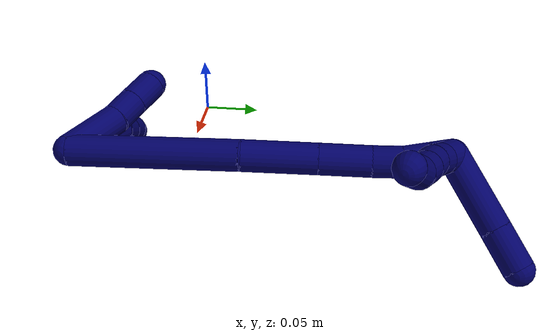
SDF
<sdf version="1.7">
 <world name="default">
  <model name="7">
   <static>0</static>
   <link name="7">
    <collision name="collision-cylinder-e_1_2_8">
     <pose>-0.000523 -0.012545 0.041512 0.293479 -0.012062 -0.001783</pose>
     <geometry><cylinder><radius>0.0125</radius><length>0.086738</length></cylinder></geometry>
     <surface>
      <friction><ode><mu>1.16</mu><mu2>1.16</mu2><slip1>0</slip1><slip2>0</slip2></ode></friction>
      <contact><ode><kp>1e+06</kp><kd>1</kd><max_vel>0</max_vel><min_depth>0.001</min_depth></ode></contact>
     </surface>
    </collision>
    <visual name="visual-cylinder-e_1_2_8">
     <pose>-0.000523 -0.012545 0.041512 0.293479 -0.012062 -0.001783</pose>
     <geometry><cylinder><radius>0.0125</radius><length>0.086738</length></cylinder></geometry>
     <material><ambient>0.003922 0 0.403922 1</ambient></material>
    </visual>
    <collision name="collision-cylinder-e_2_8_9">
     <pose>-0.001164 -0.030639 0.092958 0.50938 -0.010375 -0.002701</pose>
     <geometry><cylinder><radius>0.0125</radius><length>0.022758</length></cylinder></geometry>
     <surface>
      <friction><ode><mu>1.16</mu><mu2>1.16</mu2><slip1>0</slip1><slip2>0</slip2></ode></friction>
      <contact><ode><kp>1e+06</kp><kd>1</kd><max_vel>0</max_vel><min_depth>0.001</min_depth></ode></contact>
     </surface>
    </collision>
    <visual name="visual-cylinder-e_2_8_9">
     <pose>-0.001164 -0.030639 0.092958 0.50938 -0.010375 -0.002701</pose>
     <geometry><cylinder><radius>0.0125</radius><length>0.022758</length></cylinder></geometry>
     <material><ambient>0.003922 0 0.403922 1</ambient></material>
    </visual>
    <collision name="collision-cylinder-e_3_9_10">
     <pose>-0.001382 -0.041196 0.111614 0.52121 -0.009862 -0.00263</pose>
     <geometry><cylinder><radius>0.0125</radius><length>0.020118</length></cylinder></geometry>
     <surface>
      <friction><ode><mu>1.16</mu><mu2>1.16</mu2><slip1>0</slip1><slip2>0</slip2></ode></friction>
      <contact><ode><kp>1e+06</kp><kd>1</kd><max_vel>0</max_vel><min_depth>0.001</min_depth></ode></contact>
     </surface>
    </collision>
    <visual name="visual-cylinder-e_3_9_10">
     <pose>-0.001382 -0.041196 0.111614 0.52121 -0.009862 -0.00263</pose>
     <geometry><cylinder><radius>0.0125</radius><length>0.020118</length></cylinder></geometry>
     <material><ambient>0.003922 0 0.403922 1</ambient></material>
    </visual>
    <collision name="collision-cylinder-e_4_10_6">
     <pose>-0.001258 -0.053116 0.127825 0.745439 0.021849 0.008543</pose>
     <geometry><cylinder><radius>0.0125</radius><length>0.020386</length></cylinder></geometry>
     <surface>
      <friction><ode><mu>1.16</mu><mu2>1.16</mu2><slip1>0</slip1><slip2>0</slip2></ode></friction>
      <contact><ode><kp>1e+06</kp><kd>1</kd><max_vel>0</max_vel><min_depth>0.001</min_depth></ode></contact>
     </surface>
    </collision>
    <visual name="visual-cylinder-e_4_10_6">
     <pose>-0.001258 -0.053116 0.127825 0.745439 0.021849 0.008543</pose>
     <geometry><cylinder><radius>0.0125</radius><length>0.020386</length></cylinder></geometry>
     <material><ambient>0.003922 0 0.403922 1</ambient></material>
    </visual>
    <collision name="collision-cylinder-e_1_2_11">
     <pose>0.000272 0.006382 0.024294 -0.256884 0.010811 -0.001396</pose>
     <geometry><cylinder><radius>0.0125</radius><length>0.050239</length></cylinder></geometry>
     <surface>
      <friction><ode><mu>1.16</mu><mu2>1.16</mu2><slip1>0</slip1><slip2>0</slip2></ode></friction>
      <contact><ode><kp>1e+06</kp><kd>1</kd><max_vel>0</max_vel><min_depth>0.001</min_depth></ode></contact>
     </surface>
    </collision>
    <visual name="visual-cylinder-e_1_2_11">
     <pose>0.000272 0.006382 0.024294 -0.256884 0.010811 -0.001396</pose>
     <geometry><cylinder><radius>0.0125</radius><length>0.050239</length></cylinder></geometry>
     <material><ambient>0.003922 0 0.403922 1</ambient></material>
    </visual>
    <collision name="collision-cylinder-e_2_11_12">
     <pose>0.002559 0.015639 0.059818 -0.250661 0.17221 -0.02175</pose>
     <geometry><cylinder><radius>0.0125</radius><length>0.023533</length></cylinder></geometry>
     <surface>
      <friction><ode><mu>1.16</mu><mu2>1.16</mu2><slip1>0</slip1><slip2>0</slip2></ode></friction>
      <contact><ode><kp>1e+06</kp><kd>1</kd><max_vel>0</max_vel><min_depth>0.001</min_depth></ode></contact>
     </surface>
    </collision>
    <visual name="visual-cylinder-e_2_11_12">
     <pose>0.002559 0.015639 0.059818 -0.250661 0.17221 -0.02175</pose>
     <geometry><cylinder><radius>0.0125</radius><length>0.023533</length></cylinder></geometry>
     <material><ambient>0.003922 0 0.403922 1</ambient></material>
    </visual>
    <collision name="collision-cylinder-e_3_12_5">
     <pose>0.00668 0.021923 0.083535 -0.266458 0.161153 -0.021644</pose>
     <geometry><cylinder><radius>0.0125</radius><length>0.026228</length></cylinder></geometry>
     <surface>
      <friction><ode><mu>1.16</mu><mu2>1.16</mu2><slip1>0</slip1><slip2>0</slip2></ode></friction>
      <contact><ode><kp>1e+06</kp><kd>1</kd><max_vel>0</max_vel><min_depth>0.001</min_depth></ode></contact>
     </surface>
    </collision>
    <visual name="visual-cylinder-e_3_12_5">
     <pose>0.00668 0.021923 0.083535 -0.266458 0.161153 -0.021644</pose>
     <geometry><cylinder><radius>0.0125</radius><length>0.026228</length></cylinder></geometry>
     <material><ambient>0.003922 0 0.403922 1</ambient></material>
    </visual>
    <collision name="collision-cylinder-e_1_2_13">
     <pose>-0.044083 0.044784 0.023773 -1.08278 -0.715667 0.44235</pose>
     <geometry><cylinder><radius>0.0125</radius><length>0.134374</length></cylinder></geometry>
     <surface>
      <friction><ode><mu>1.16</mu><mu2>1.16</mu2><slip1>0</slip1><slip2>0</slip2></ode></friction>
      <contact><ode><kp>1e+06</kp><kd>1</kd><max_vel>0</max_vel><min_depth>0.001</min_depth></ode></contact>
     </surface>
    </collision>
    <visual name="visual-cylinder-e_1_2_13">
     <pose>-0.044083 0.044784 0.023773 -1.08278 -0.715667 0.44235</pose>
     <geometry><cylinder><radius>0.0125</radius><length>0.134374</length></cylinder></geometry>
     <material><ambient>0.003922 0 0.403922 1</ambient></material>
    </visual>
    <collision name="collision-cylinder-e_2_13_14">
     <pose>-0.107964 0.106876 0.061168 -0.903991 -0.732231 0.368083</pose>
     <geometry><cylinder><radius>0.0125</radius><length>0.05923</length></cylinder></geometry>
     <surface>
      <friction><ode><mu>1.16</mu><mu2>1.16</mu2><slip1>0</slip1><slip2>0</slip2></ode></friction>
      <contact><ode><kp>1e+06</kp><kd>1</kd><max_vel>0</max_vel><min_depth>0.001</min_depth></ode></contact>
     </surface>
    </collision>
    <visual name="visual-cylinder-e_2_13_14">
     <pose>-0.107964 0.106876 0.061168 -0.903991 -0.732231 0.368083</pose>
     <geometry><cylinder><radius>0.0125</radius><length>0.05923</length></cylinder></geometry>
     <material><ambient>0.003922 0 0.403922 1</ambient></material>
    </visual>
    <collision name="collision-cylinder-e_3_14_15">
     <pose>-0.141706 0.136333 0.084278 -0.907843 -0.735245 0.37148</pose>
     <geometry><cylinder><radius>0.0125</radius><length>0.041572</length></cylinder></geometry>
     <surface>
      <friction><ode><mu>1.16</mu><mu2>1.16</mu2><slip1>0</slip1><slip2>0</slip2></ode></friction>
      <contact><ode><kp>1e+06</kp><kd>1</kd><max_vel>0</max_vel><min_depth>0.001</min_depth></ode></contact>
     </surface>
    </collision>
    <visual name="visual-cylinder-e_3_14_15">
     <pose>-0.141706 0.136333 0.084278 -0.907843 -0.735245 0.37148</pose>
     <geometry><cylinder><radius>0.0125</radius><length>0.041572</length></cylinder></geometry>
     <material><ambient>0.003922 0 0.403922 1</ambient></material>
    </visual>
    <collision name="collision-cylinder-e_4_15_16">
     <pose>-0.163367 0.156539 0.097933 -1.09338 -0.705149 0.440569</pose>
     <geometry><cylinder><radius>0.0125</radius><length>0.023818</length></cylinder></geometry>
     <surface>
      <friction><ode><mu>1.16</mu><mu2>1.16</mu2><slip1>0</slip1><slip2>0</slip2></ode></friction>
      <contact><ode><kp>1e+06</kp><kd>1</kd><max_vel>0</max_vel><min_depth>0.001</min_depth></ode></contact>
     </surface>
    </collision>
    <visual name="visual-cylinder-e_4_15_16">
     <pose>-0.163367 0.156539 0.097933 -1.09338 -0.705149 0.440569</pose>
     <geometry><cylinder><radius>0.0125</radius><length>0.023818</length></cylinder></geometry>
     <material><ambient>0.003922 0 0.403922 1</ambient></material>
    </visual>
    <collision name="collision-cylinder-e_5_16_17">
     <pose>-0.176451 0.171386 0.10788 -0.865711 -0.541557 0.255151</pose>
     <geometry><cylinder><radius>0.0125</radius><length>0.020817</length></cylinder></geometry>
     <surface>
      <friction><ode><mu>1.16</mu><mu2>1.16</mu2><slip1>0</slip1><slip2>0</slip2></ode></friction>
      <contact><ode><kp>1e+06</kp><kd>1</kd><max_vel>0</max_vel><min_depth>0.001</min_depth></ode></contact>
     </surface>
    </collision>
    <visual name="visual-cylinder-e_5_16_17">
     <pose>-0.176451 0.171386 0.10788 -0.865711 -0.541557 0.255151</pose>
     <geometry><cylinder><radius>0.0125</radius><length>0.020817</length></cylinder></geometry>
     <material><ambient>0.003922 0 0.403922 1</ambient></material>
    </visual>
    <collision name="collision-cylinder-e_6_17_1">
     <pose>-0.186675 0.182478 0.121394 -0.507479 -0.502145 0.132832</pose>
     <geometry><cylinder><radius>0.0125</radius><length>0.020189</length></cylinder></geometry>
     <surface>
      <friction><ode><mu>1.16</mu><mu2>1.16</mu2><slip1>0</slip1><slip2>0</slip2></ode></friction>
      <contact><ode><kp>1e+06</kp><kd>1</kd><max_vel>0</max_vel><min_depth>0.001</min_depth></ode></contact>
     </surface>
    </collision>
    <visual name="visual-cylinder-e_6_17_1">
     <pose>-0.186675 0.182478 0.121394 -0.507479 -0.502145 0.132832</pose>
     <geometry><cylinder><radius>0.0125</radius><length>0.020189</length></cylinder></geometry>
     <material><ambient>0.003922 0 0.403922 1</ambient></material>
    </visual>
    <collision name="collision-cylinder-e_1_1_18">
     <pose>-0.223102 0.18546 0.120242 2.99433 -1.2936 -2.94685</pose>
     <geometry><cylinder><radius>0.0125</radius><length>0.065643</length></cylinder></geometry>
     <surface>
      <friction><ode><mu>1.16</mu><mu2>1.16</mu2><slip1>0</slip1><slip2>0</slip2></ode></friction>
      <contact><ode><kp>1e+06</kp><kd>1</kd><max_vel>0</max_vel><min_depth>0.001</min_depth></ode></contact>
     </surface>
    </collision>
    <visual name="visual-cylinder-e_1_1_18">
     <pose>-0.223102 0.18546 0.120242 2.99433 -1.2936 -2.94685</pose>
     <geometry><cylinder><radius>0.0125</radius><length>0.065643</length></cylinder></geometry>
     <material><ambient>0.003922 0 0.403922 1</ambient></material>
    </visual>
    <collision name="collision-cylinder-e_2_18_4">
     <pose>-0.271218 0.183281 0.106826 2.95374 -1.299 -2.89475</pose>
     <geometry><cylinder><radius>0.0125</radius><length>0.034357</length></cylinder></geometry>
     <surface>
      <friction><ode><mu>1.16</mu><mu2>1.16</mu2><slip1>0</slip1><slip2>0</slip2></ode></friction>
      <contact><ode><kp>1e+06</kp><kd>1</kd><max_vel>0</max_vel><min_depth>0.001</min_depth></ode></contact>
     </surface>
    </collision>
    <visual name="visual-cylinder-e_2_18_4">
     <pose>-0.271218 0.183281 0.106826 2.95374 -1.299 -2.89475</pose>
     <geometry><cylinder><radius>0.0125</radius><length>0.034357</length></cylinder></geometry>
     <material><ambient>0.003922 0 0.403922 1</ambient></material>
    </visual>
    <collision name="collision-cylinder-e_1_1_19">
     <pose>-0.189125 0.187133 0.119427 -3.10501 0.243159 -2.84433</pose>
     <geometry><cylinder><radius>0.0125</radius><length>0.02</length></cylinder></geometry>
     <surface>
      <friction><ode><mu>1.16</mu><mu2>1.16</mu2><slip1>0</slip1><slip2>0</slip2></ode></friction>
      <contact><ode><kp>1e+06</kp><kd>1</kd><max_vel>0</max_vel><min_depth>0.001</min_depth></ode></contact>
     </surface>
    </collision>
    <visual name="visual-cylinder-e_1_1_19">
     <pose>-0.189125 0.187133 0.119427 -3.10501 0.243159 -2.84433</pose>
     <geometry><cylinder><radius>0.0125</radius><length>0.02</length></cylinder></geometry>
     <material><ambient>0.003922 0 0.403922 1</ambient></material>
    </visual>
    <collision name="collision-cylinder-e_2_19_20">
     <pose>-0.184387 0.189392 0.100192 -2.94455 0.23526 -1.74853</pose>
     <geometry><cylinder><radius>0.0125</radius><length>0.02</length></cylinder></geometry>
     <surface>
      <friction><ode><mu>1.16</mu><mu2>1.16</mu2><slip1>0</slip1><slip2>0</slip2></ode></friction>
      <contact><ode><kp>1e+06</kp><kd>1</kd><max_vel>0</max_vel><min_depth>0.001</min_depth></ode></contact>
     </surface>
    </collision>
    <visual name="visual-cylinder-e_2_19_20">
     <pose>-0.184387 0.189392 0.100192 -2.94455 0.23526 -1.74853</pose>
     <geometry><cylinder><radius>0.0125</radius><length>0.02</length></cylinder></geometry>
     <material><ambient>0.003922 0 0.403922 1</ambient></material>
    </visual>
    <collision name="collision-cylinder-e_3_20_21">
     <pose>-0.181291 0.193148 0.080858 -2.95472 0.076535 -0.775746</pose>
     <geometry><cylinder><radius>0.0125</radius><length>0.02</length></cylinder></geometry>
     <surface>
      <friction><ode><mu>1.16</mu><mu2>1.16</mu2><slip1>0</slip1><slip2>0</slip2></ode></friction>
      <contact><ode><kp>1e+06</kp><kd>1</kd><max_vel>0</max_vel><min_depth>0.001</min_depth></ode></contact>
     </surface>
    </collision>
    <visual name="visual-cylinder-e_3_20_21">
     <pose>-0.181291 0.193148 0.080858 -2.95472 0.076535 -0.775746</pose>
     <geometry><cylinder><radius>0.0125</radius><length>0.02</length></cylinder></geometry>
     <material><ambient>0.003922 0 0.403922 1</ambient></material>
    </visual>
    <collision name="collision-cylinder-e_4_21_22">
     <pose>-0.179216 0.196897 0.06133 -2.94908 0.13145 -1.19664</pose>
     <geometry><cylinder><radius>0.0125</radius><length>0.02</length></cylinder></geometry>
     <surface>
      <friction><ode><mu>1.16</mu><mu2>1.16</mu2><slip1>0</slip1><slip2>0</slip2></ode></friction>
      <contact><ode><kp>1e+06</kp><kd>1</kd><max_vel>0</max_vel><min_depth>0.001</min_depth></ode></contact>
     </surface>
    </collision>
    <visual name="visual-cylinder-e_4_21_22">
     <pose>-0.179216 0.196897 0.06133 -2.94908 0.13145 -1.19664</pose>
     <geometry><cylinder><radius>0.0125</radius><length>0.02</length></cylinder></geometry>
     <material><ambient>0.003922 0 0.403922 1</ambient></material>
    </visual>
    <collision name="collision-cylinder-e_5_22_3">
     <pose>-0.174042 0.202126 0.042999 -2.77197 0.396603 -1.64294</pose>
     <geometry><cylinder><radius>0.0125</radius><length>0.02</length></cylinder></geometry>
     <surface>
      <friction><ode><mu>1.16</mu><mu2>1.16</mu2><slip1>0</slip1><slip2>0</slip2></ode></friction>
      <contact><ode><kp>1e+06</kp><kd>1</kd><max_vel>0</max_vel><min_depth>0.001</min_depth></ode></contact>
     </surface>
    </collision>
    <visual name="visual-cylinder-e_5_22_3">
     <pose>-0.174042 0.202126 0.042999 -2.77197 0.396603 -1.64294</pose>
     <geometry><cylinder><radius>0.0125</radius><length>0.02</length></cylinder></geometry>
     <material><ambient>0.003922 0 0.403922 1</ambient></material>
    </visual>
    <collision name="collision-sphere-3">
     <pose>-0.170179 0.205458 0.034398 0 -0 0</pose>
     <geometry><sphere><radius>0.0125</radius></sphere></geometry>
     <surface>
      <friction><ode><mu>1.16</mu><mu2>1.16</mu2><slip1>0</slip1><slip2>0</slip2></ode></friction>
      <contact><ode><kp>1e+06</kp><kd>1</kd><max_vel>0</max_vel><min_depth>0.001</min_depth></ode></contact>
     </surface>
    </collision>
    <visual name="visual-sphere-3">
     <pose>-0.170179 0.205458 0.034398 0 -0 0</pose>
     <geometry><sphere><radius>0.0125</radius></sphere></geometry>
     <material><ambient>0.003922 0 0.403922 1</ambient></material>
    </visual>
    <collision name="collision-sphere-22">
     <pose>-0.177905 0.198794 0.0516 0 -0 0</pose>
     <geometry><sphere><radius>0.0125</radius></sphere></geometry>
     <surface>
      <friction><ode><mu>1.16</mu><mu2>1.16</mu2><slip1>0</slip1><slip2>0</slip2></ode></friction>
      <contact><ode><kp>1e+06</kp><kd>1</kd><max_vel>0</max_vel><min_depth>0.001</min_depth></ode></contact>
     </surface>
    </collision>
    <visual name="visual-sphere-22">
     <pose>-0.177905 0.198794 0.0516 0 -0 0</pose>
     <geometry><sphere><radius>0.0125</radius></sphere></geometry>
     <material><ambient>0.003922 0 0.403922 1</ambient></material>
    </visual>
    <collision name="collision-sphere-21">
     <pose>-0.180527 0.195 0.071061 0 -0 0</pose>
     <geometry><sphere><radius>0.0125</radius></sphere></geometry>
     <surface>
      <friction><ode><mu>1.16</mu><mu2>1.16</mu2><slip1>0</slip1><slip2>0</slip2></ode></friction>
      <contact><ode><kp>1e+06</kp><kd>1</kd><max_vel>0</max_vel><min_depth>0.001</min_depth></ode></contact>
     </surface>
    </collision>
    <visual name="visual-sphere-21">
     <pose>-0.180527 0.195 0.071061 0 -0 0</pose>
     <geometry><sphere><radius>0.0125</radius></sphere></geometry>
     <material><ambient>0.003922 0 0.403922 1</ambient></material>
    </visual>
    <collision name="collision-sphere-20">
     <pose>-0.182056 0.191296 0.090655 0 -0 0</pose>
     <geometry><sphere><radius>0.0125</radius></sphere></geometry>
     <surface>
      <friction><ode><mu>1.16</mu><mu2>1.16</mu2><slip1>0</slip1><slip2>0</slip2></ode></friction>
      <contact><ode><kp>1e+06</kp><kd>1</kd><max_vel>0</max_vel><min_depth>0.001</min_depth></ode></contact>
     </surface>
    </collision>
    <visual name="visual-sphere-20">
     <pose>-0.182056 0.191296 0.090655 0 -0 0</pose>
     <geometry><sphere><radius>0.0125</radius></sphere></geometry>
     <material><ambient>0.003922 0 0.403922 1</ambient></material>
    </visual>
    <collision name="collision-sphere-19">
     <pose>-0.186718 0.187488 0.109728 0 -0 0</pose>
     <geometry><sphere><radius>0.0125</radius></sphere></geometry>
     <surface>
      <friction><ode><mu>1.16</mu><mu2>1.16</mu2><slip1>0</slip1><slip2>0</slip2></ode></friction>
      <contact><ode><kp>1e+06</kp><kd>1</kd><max_vel>0</max_vel><min_depth>0.001</min_depth></ode></contact>
     </surface>
    </collision>
    <visual name="visual-sphere-19">
     <pose>-0.186718 0.187488 0.109728 0 -0 0</pose>
     <geometry><sphere><radius>0.0125</radius></sphere></geometry>
     <material><ambient>0.003922 0 0.403922 1</ambient></material>
    </visual>
    <collision name="collision-sphere-11">
     <pose>0.000543 0.012763 0.048588 0 -0 0</pose>
     <geometry><sphere><radius>0.0125</radius></sphere></geometry>
     <surface>
      <friction><ode><mu>1.16</mu><mu2>1.16</mu2><slip1>0</slip1><slip2>0</slip2></ode></friction>
      <contact><ode><kp>1e+06</kp><kd>1</kd><max_vel>0</max_vel><min_depth>0.001</min_depth></ode></contact>
     </surface>
    </collision>
    <visual name="visual-sphere-11">
     <pose>0.000543 0.012763 0.048588 0 -0 0</pose>
     <geometry><sphere><radius>0.0125</radius></sphere></geometry>
     <material><ambient>0.003922 0 0.403922 1</ambient></material>
    </visual>
    <collision name="collision-sphere-6">
     <pose>-0.001035 -0.060028 0.135313 0 -0 0</pose>
     <geometry><sphere><radius>0.0125</radius></sphere></geometry>
     <surface>
      <friction><ode><mu>1.16</mu><mu2>1.16</mu2><slip1>0</slip1><slip2>0</slip2></ode></friction>
      <contact><ode><kp>1e+06</kp><kd>1</kd><max_vel>0</max_vel><min_depth>0.001</min_depth></ode></contact>
     </surface>
    </collision>
    <visual name="visual-sphere-6">
     <pose>-0.001035 -0.060028 0.135313 0 -0 0</pose>
     <geometry><sphere><radius>0.0125</radius></sphere></geometry>
     <material><ambient>0.003922 0 0.403922 1</ambient></material>
    </visual>
    <collision name="collision-sphere-10">
     <pose>-0.001481 -0.046204 0.120337 0 -0 0</pose>
     <geometry><sphere><radius>0.0125</radius></sphere></geometry>
     <surface>
      <friction><ode><mu>1.16</mu><mu2>1.16</mu2><slip1>0</slip1><slip2>0</slip2></ode></friction>
      <contact><ode><kp>1e+06</kp><kd>1</kd><max_vel>0</max_vel><min_depth>0.001</min_depth></ode></contact>
     </surface>
    </collision>
    <visual name="visual-sphere-10">
     <pose>-0.001481 -0.046204 0.120337 0 -0 0</pose>
     <geometry><sphere><radius>0.0125</radius></sphere></geometry>
     <material><ambient>0.003922 0 0.403922 1</ambient></material>
    </visual>
    <collision name="collision-sphere-9">
     <pose>-0.001282 -0.036187 0.102891 0 -0 0</pose>
     <geometry><sphere><radius>0.0125</radius></sphere></geometry>
     <surface>
      <friction><ode><mu>1.16</mu><mu2>1.16</mu2><slip1>0</slip1><slip2>0</slip2></ode></friction>
      <contact><ode><kp>1e+06</kp><kd>1</kd><max_vel>0</max_vel><min_depth>0.001</min_depth></ode></contact>
     </surface>
    </collision>
    <visual name="visual-sphere-9">
     <pose>-0.001282 -0.036187 0.102891 0 -0 0</pose>
     <geometry><sphere><radius>0.0125</radius></sphere></geometry>
     <material><ambient>0.003922 0 0.403922 1</ambient></material>
    </visual>
    <collision name="collision-sphere-2">
     <geometry><sphere><radius>0.0125</radius></sphere></geometry>
     <surface>
      <friction><ode><mu>1.16</mu><mu2>1.16</mu2><slip1>0</slip1><slip2>0</slip2></ode></friction>
      <contact><ode><kp>1e+06</kp><kd>1</kd><max_vel>0</max_vel><min_depth>0.001</min_depth></ode></contact>
     </surface>
    </collision>
    <visual name="visual-sphere-2">
     <geometry><sphere><radius>0.0125</radius></sphere></geometry>
     <material><ambient>0.003922 0 0.403922 1</ambient></material>
    </visual>
    <collision name="collision-sphere-8">
     <pose>-0.001046 -0.02509 0.083024 0 -0 0</pose>
     <geometry><sphere><radius>0.0125</radius></sphere></geometry>
     <surface>
      <friction><ode><mu>1.16</mu><mu2>1.16</mu2><slip1>0</slip1><slip2>0</slip2></ode></friction>
      <contact><ode><kp>1e+06</kp><kd>1</kd><max_vel>0</max_vel><min_depth>0.001</min_depth></ode></contact>
     </surface>
    </collision>
    <visual name="visual-sphere-8">
     <pose>-0.001046 -0.02509 0.083024 0 -0 0</pose>
     <geometry><sphere><radius>0.0125</radius></sphere></geometry>
     <material><ambient>0.003922 0 0.403922 1</ambient></material>
    </visual>
    <collision name="collision-sphere-12">
     <pose>0.004576 0.018514 0.071048 0 -0 0</pose>
     <geometry><sphere><radius>0.0125</radius></sphere></geometry>
     <surface>
      <friction><ode><mu>1.16</mu><mu2>1.16</mu2><slip1>0</slip1><slip2>0</slip2></ode></friction>
      <contact><ode><kp>1e+06</kp><kd>1</kd><max_vel>0</max_vel><min_depth>0.001</min_depth></ode></contact>
     </surface>
    </collision>
    <visual name="visual-sphere-12">
     <pose>0.004576 0.018514 0.071048 0 -0 0</pose>
     <geometry><sphere><radius>0.0125</radius></sphere></geometry>
     <material><ambient>0.003922 0 0.403922 1</ambient></material>
    </visual>
    <collision name="collision-sphere-5">
     <pose>0.008784 0.025331 0.096023 0 -0 0</pose>
     <geometry><sphere><radius>0.0125</radius></sphere></geometry>
     <surface>
      <friction><ode><mu>1.16</mu><mu2>1.16</mu2><slip1>0</slip1><slip2>0</slip2></ode></friction>
      <contact><ode><kp>1e+06</kp><kd>1</kd><max_vel>0</max_vel><min_depth>0.001</min_depth></ode></contact>
     </surface>
    </collision>
    <visual name="visual-sphere-5">
     <pose>0.008784 0.025331 0.096023 0 -0 0</pose>
     <geometry><sphere><radius>0.0125</radius></sphere></geometry>
     <material><ambient>0.003922 0 0.403922 1</ambient></material>
    </visual>
    <collision name="collision-sphere-13">
     <pose>-0.088166 0.089569 0.047547 0 -0 0</pose>
     <geometry><sphere><radius>0.0125</radius></sphere></geometry>
     <surface>
      <friction><ode><mu>1.16</mu><mu2>1.16</mu2><slip1>0</slip1><slip2>0</slip2></ode></friction>
      <contact><ode><kp>1e+06</kp><kd>1</kd><max_vel>0</max_vel><min_depth>0.001</min_depth></ode></contact>
     </surface>
    </collision>
    <visual name="visual-sphere-13">
     <pose>-0.088166 0.089569 0.047547 0 -0 0</pose>
     <geometry><sphere><radius>0.0125</radius></sphere></geometry>
     <material><ambient>0.003922 0 0.403922 1</ambient></material>
    </visual>
    <collision name="collision-sphere-14">
     <pose>-0.127763 0.124182 0.07479 0 -0 0</pose>
     <geometry><sphere><radius>0.0125</radius></sphere></geometry>
     <surface>
      <friction><ode><mu>1.16</mu><mu2>1.16</mu2><slip1>0</slip1><slip2>0</slip2></ode></friction>
      <contact><ode><kp>1e+06</kp><kd>1</kd><max_vel>0</max_vel><min_depth>0.001</min_depth></ode></contact>
     </surface>
    </collision>
    <visual name="visual-sphere-14">
     <pose>-0.127763 0.124182 0.07479 0 -0 0</pose>
     <geometry><sphere><radius>0.0125</radius></sphere></geometry>
     <material><ambient>0.003922 0 0.403922 1</ambient></material>
    </visual>
    <collision name="collision-sphere-15">
     <pose>-0.155648 0.148484 0.093766 0 -0 0</pose>
     <geometry><sphere><radius>0.0125</radius></sphere></geometry>
     <surface>
      <friction><ode><mu>1.16</mu><mu2>1.16</mu2><slip1>0</slip1><slip2>0</slip2></ode></friction>
      <contact><ode><kp>1e+06</kp><kd>1</kd><max_vel>0</max_vel><min_depth>0.001</min_depth></ode></contact>
     </surface>
    </collision>
    <visual name="visual-sphere-15">
     <pose>-0.155648 0.148484 0.093766 0 -0 0</pose>
     <geometry><sphere><radius>0.0125</radius></sphere></geometry>
     <material><ambient>0.003922 0 0.403922 1</ambient></material>
    </visual>
    <collision name="collision-sphere-16">
     <pose>-0.171086 0.164593 0.1021 0 -0 0</pose>
     <geometry><sphere><radius>0.0125</radius></sphere></geometry>
     <surface>
      <friction><ode><mu>1.16</mu><mu2>1.16</mu2><slip1>0</slip1><slip2>0</slip2></ode></friction>
      <contact><ode><kp>1e+06</kp><kd>1</kd><max_vel>0</max_vel><min_depth>0.001</min_depth></ode></contact>
     </surface>
    </collision>
    <visual name="visual-sphere-16">
     <pose>-0.171086 0.164593 0.1021 0 -0 0</pose>
     <geometry><sphere><radius>0.0125</radius></sphere></geometry>
     <material><ambient>0.003922 0 0.403922 1</ambient></material>
    </visual>
    <collision name="collision-sphere-17">
     <pose>-0.181816 0.178178 0.113661 0 -0 0</pose>
     <geometry><sphere><radius>0.0125</radius></sphere></geometry>
     <surface>
      <friction><ode><mu>1.16</mu><mu2>1.16</mu2><slip1>0</slip1><slip2>0</slip2></ode></friction>
      <contact><ode><kp>1e+06</kp><kd>1</kd><max_vel>0</max_vel><min_depth>0.001</min_depth></ode></contact>
     </surface>
    </collision>
    <visual name="visual-sphere-17">
     <pose>-0.181816 0.178178 0.113661 0 -0 0</pose>
     <geometry><sphere><radius>0.0125</radius></sphere></geometry>
     <material><ambient>0.003922 0 0.403922 1</ambient></material>
    </visual>
    <collision name="collision-sphere-1">
     <pose>-0.191533 0.186778 0.129127 0 -0 0</pose>
     <geometry><sphere><radius>0.0125</radius></sphere></geometry>
     <surface>
      <friction><ode><mu>1.16</mu><mu2>1.16</mu2><slip1>0</slip1><slip2>0</slip2></ode></friction>
      <contact><ode><kp>1e+06</kp><kd>1</kd><max_vel>0</max_vel><min_depth>0.001</min_depth></ode></contact>
     </surface>
    </collision>
    <visual name="visual-sphere-1">
     <pose>-0.191533 0.186778 0.129127 0 -0 0</pose>
     <geometry><sphere><radius>0.0125</radius></sphere></geometry>
     <material><ambient>0.003922 0 0.403922 1</ambient></material>
    </visual>
    <collision name="collision-sphere-18">
     <pose>-0.254671 0.184142 0.111357 0 -0 0</pose>
     <geometry><sphere><radius>0.0125</radius></sphere></geometry>
     <surface>
      <friction><ode><mu>1.16</mu><mu2>1.16</mu2><slip1>0</slip1><slip2>0</slip2></ode></friction>
      <contact><ode><kp>1e+06</kp><kd>1</kd><max_vel>0</max_vel><min_depth>0.001</min_depth></ode></contact>
     </surface>
    </collision>
    <visual name="visual-sphere-18">
     <pose>-0.254671 0.184142 0.111357 0 -0 0</pose>
     <geometry><sphere><radius>0.0125</radius></sphere></geometry>
     <material><ambient>0.003922 0 0.403922 1</ambient></material>
    </visual>
    <collision name="collision-sphere-4">
     <pose>-0.287766 0.18242 0.102296 0 -0 0</pose>
     <geometry><sphere><radius>0.0125</radius></sphere></geometry>
     <surface>
      <friction><ode><mu>1.16</mu><mu2>1.16</mu2><slip1>0</slip1><slip2>0</slip2></ode></friction>
      <contact><ode><kp>1e+06</kp><kd>1</kd><max_vel>0</max_vel><min_depth>0.001</min_depth></ode></contact>
     </surface>
    </collision>
    <visual name="visual-sphere-4">
     <pose>-0.287766 0.18242 0.102296 0 -0 0</pose>
     <geometry><sphere><radius>0.0125</radius></sphere></geometry>
     <material><ambient>0.003922 0 0.403922 1</ambient></material>
    </visual>
    <inertial>
     <pose>-0.095391 0.085877 0.069862 0 -0 0</pose>
     <mass>0.75</mass>
     <inertia>
      <ixx>0.000283</ixx>
      <ixy>0</ixy>
      <ixz>0</ixz>
      <iyy>0.000352</iyy>
      <iyz>0</iyz>
      <izz>6.2e-05</izz>
     </inertia>
    </inertial>
   </link>
   <pose>0.204761 -0.064842 0.074633 1.74023 -0.704429 -2.03848</pose>
  </model>
 </world>
</sdf>
